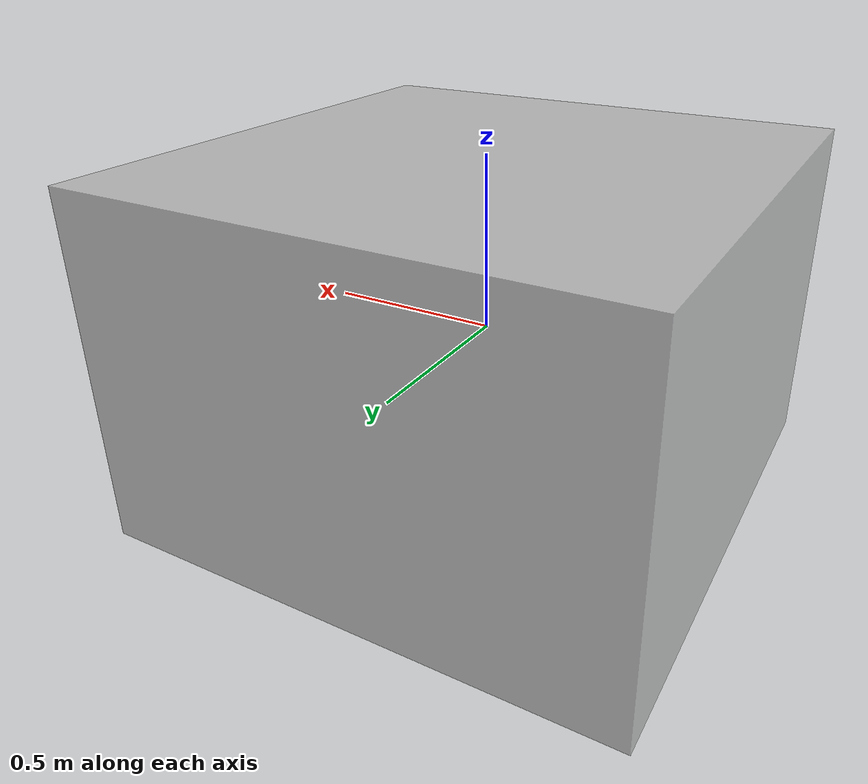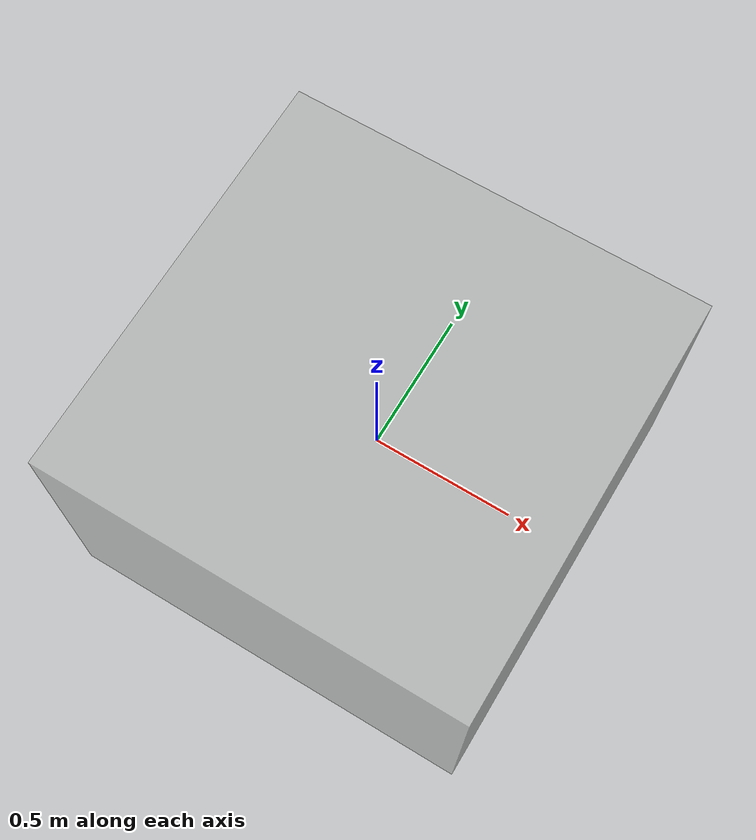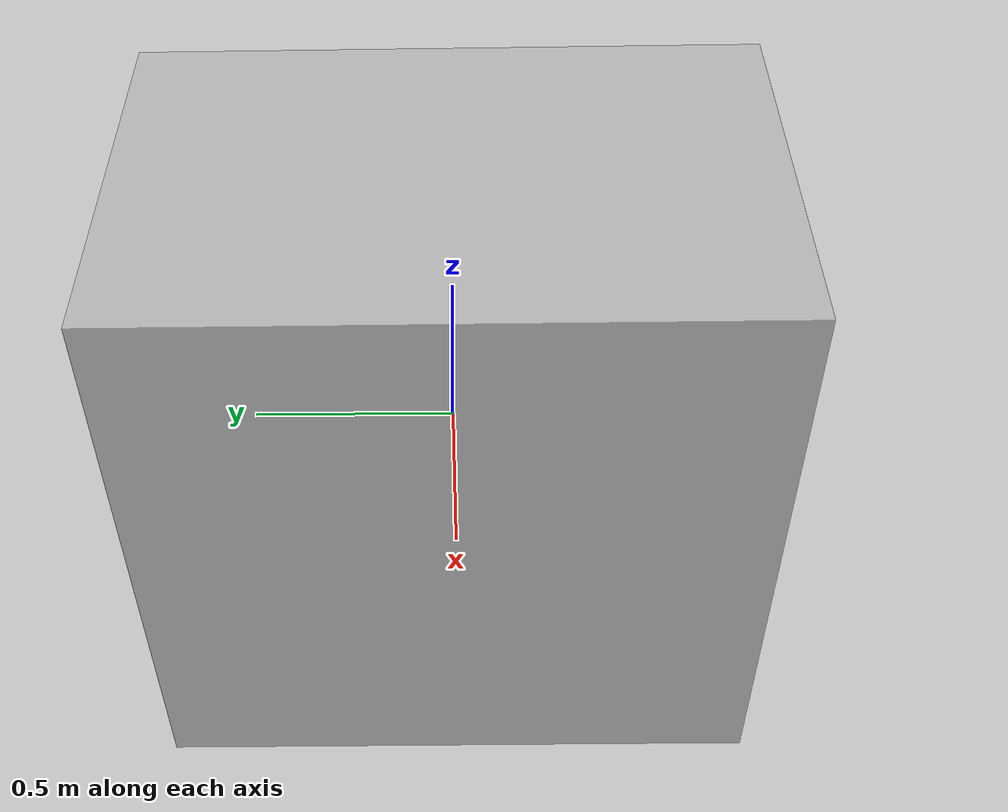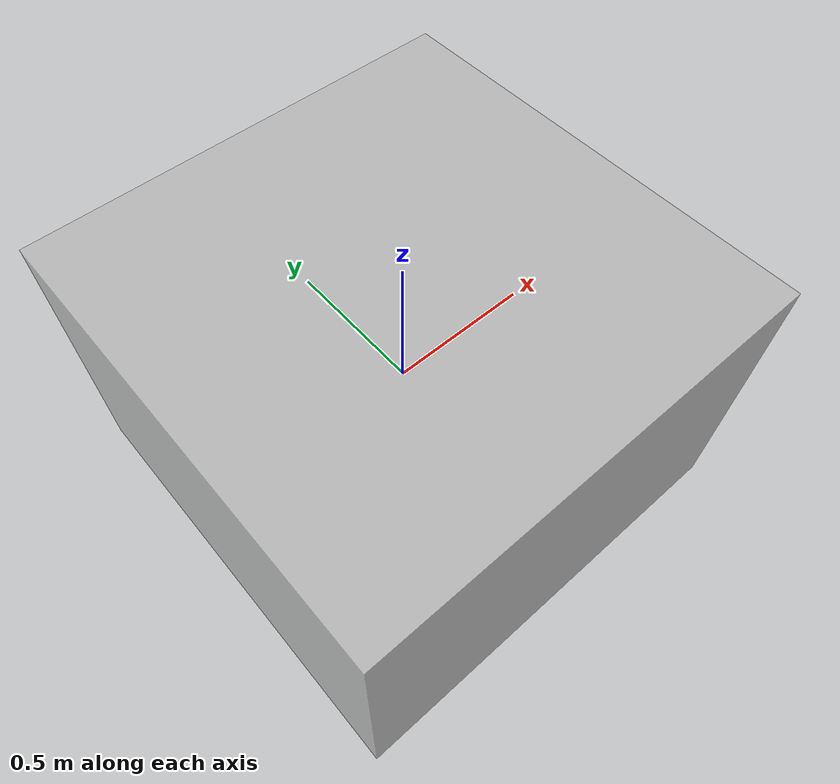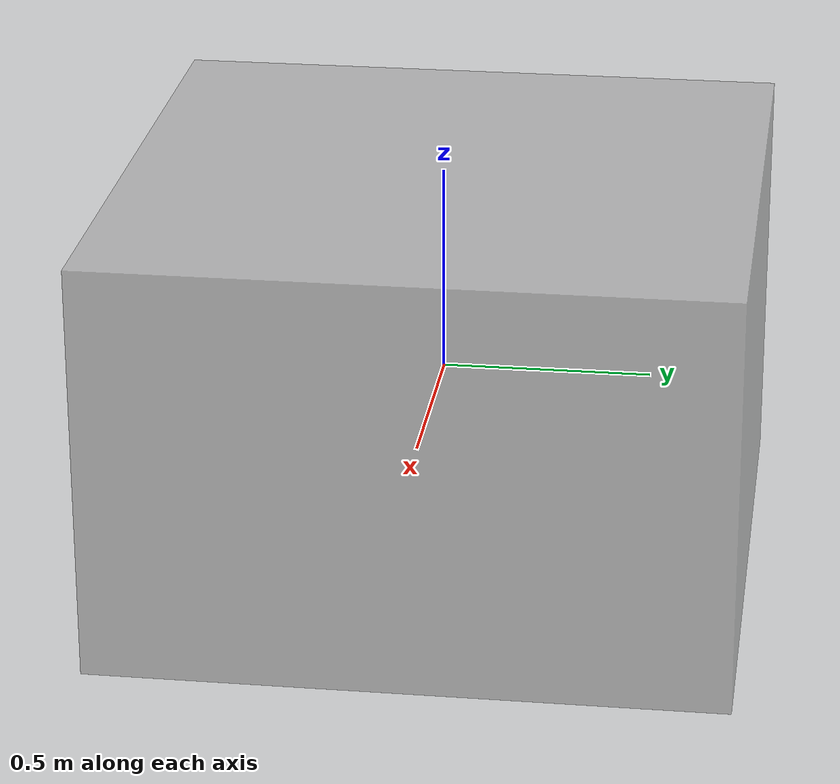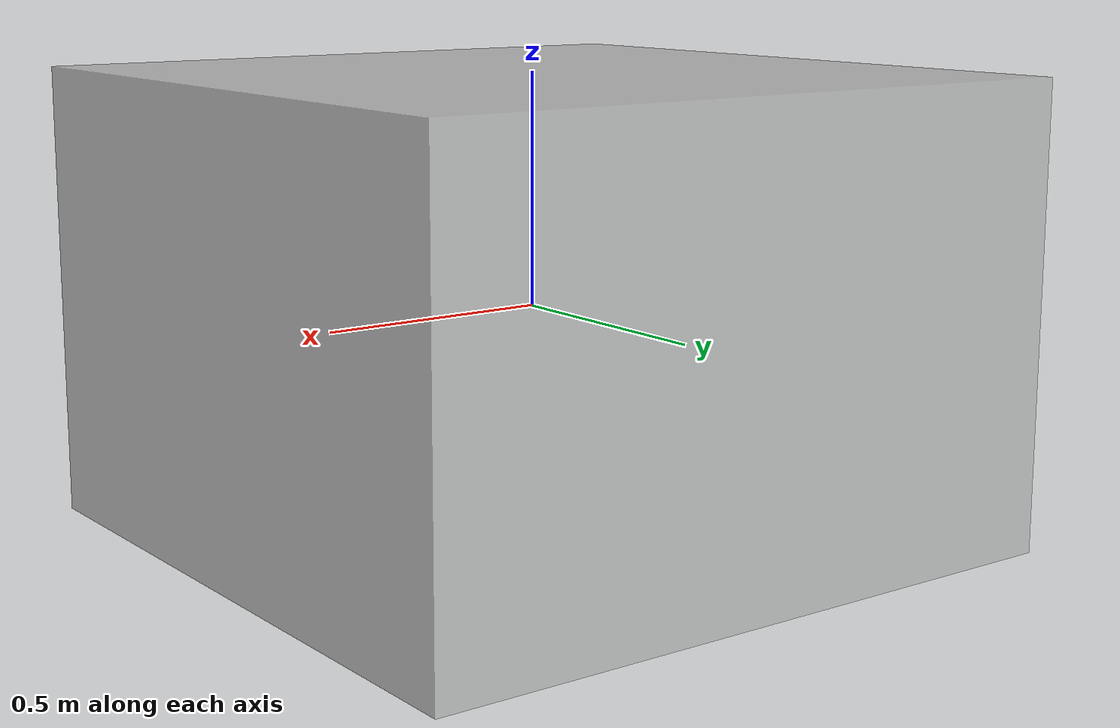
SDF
<?xml version="1.0"?>
<sdf version="1.2">
  <model name="soft_ground_B">
    <static>true</static>
    <link name="link">
      <collision name="collision">
        <pose>0 0 0 0 0 0</pose>
        <geometry>
          <box>
            <size>1.5 1.5 1</size>
          </box>
        </geometry>

        <surface>
          <friction>
            <ode>
              <mu>1</mu>
              <mu2>1</mu2>
            </ode>
          </friction>
          <contact>
            <ode>
        <kp>10000.0</kp>  <kd>600.0</kd>  <!-- gain set 1 -->
        <!-- gain set 2 -->
          <!-- kd = 0.3 kp --> <!-- gain set 3 -->
            </ode>
          </contact>
        </surface>

      </collision>
      <visual name="visual_1">
	<transparency>0.3</transparency>
        <pose>0 0 0 0 0 0</pose>
        <cast_shadows>false</cast_shadows>
        <geometry>
          <box>
            <size>1.5 1.5 1</size>
          </box>
        </geometry>
        <material>
	  <lighting>true</lighting>
          <script>
            <uri>model://soft_ground_B/materials/scripts</uri>
            <uri>model://soft_ground_B/materials/textures</uri>
            <name>vrc/mudB</name>
          </script>
        </material>
      </visual>
    </link>
  </model>cc
</sdf>
